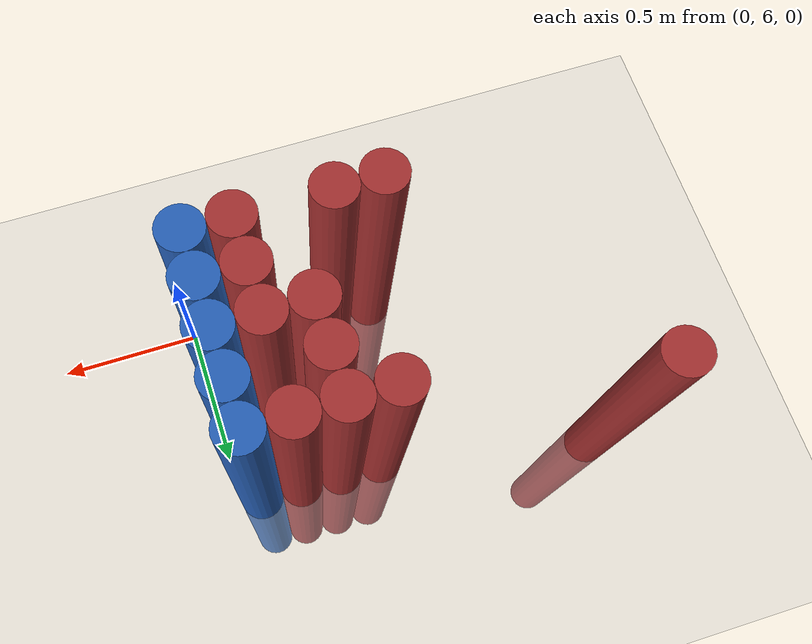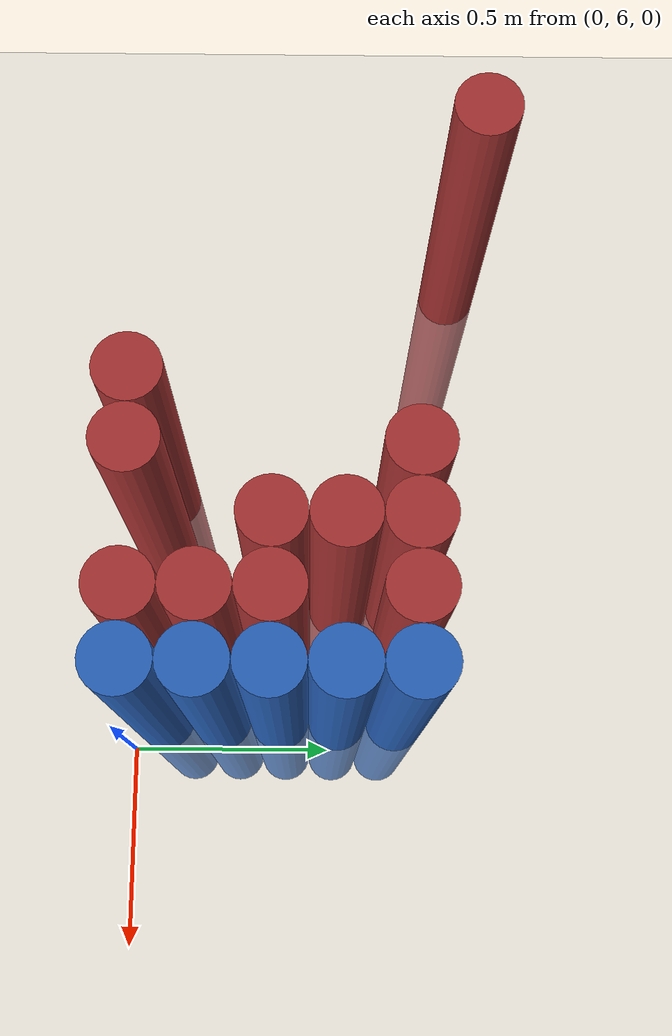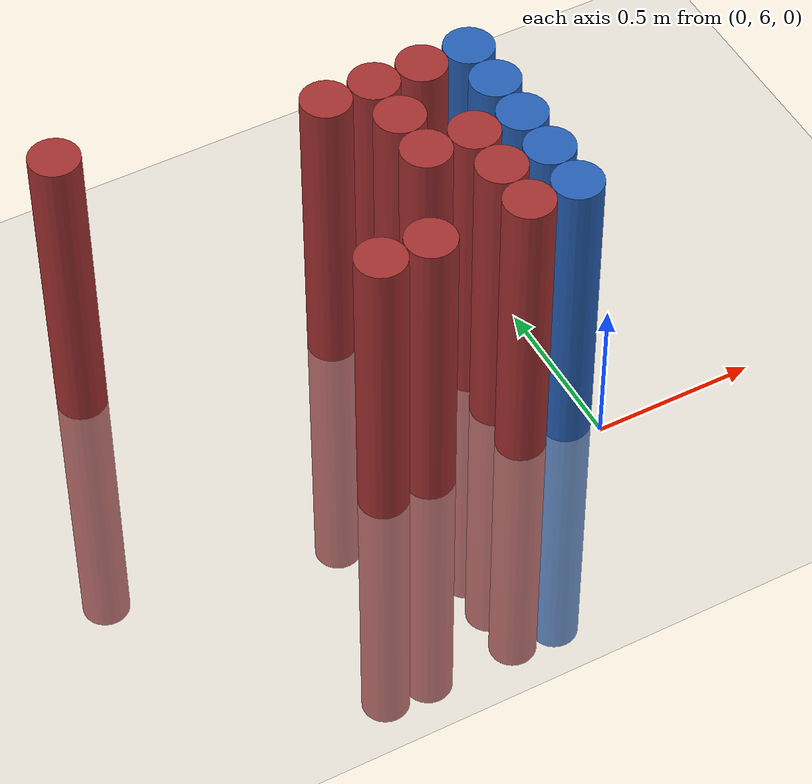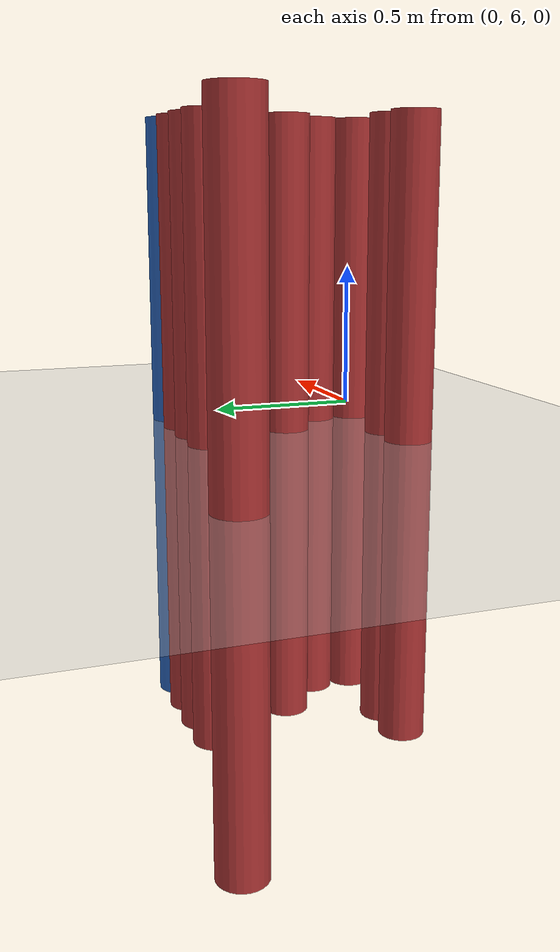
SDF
<sdf version="1.6">
 <world name="default">
  <model name="ground_plane">
   <static>1</static>
   <link name="link">
    <collision name="collision">
     <geometry><plane><normal>0 0 1</normal><size>100 100</size></plane></geometry>
     <surface><friction><ode><mu>100</mu><mu2>50</mu2></ode></friction></surface>
    </collision>
    <visual name="visual">
     <cast_shadows>0</cast_shadows>
     <geometry><plane><normal>0 0 1</normal><size>100 100</size></plane></geometry>
     <material>
      <script><uri>file://media/materials/scripts/gazebo.material</uri><name>Gazebo/Grey</name></script>
     </material>
    </visual>
   </link>
  </model>
  <model name="unit_cylinder_182">
   <static>1</static>
   <pose>-1.275000 6.825000 0.000000 0.000000 0.000000 0.000000</pose>
   <link name="link">
    <inertial>
     <mass>1</mass>
     <inertia><ixx>0.145833</ixx><ixy>0</ixy><ixz>0</ixz><iyy>0.145833</iyy><iyz>0</iyz><izz>0.125</izz></inertia>
    </inertial>
    <collision name="collision">
     <geometry><cylinder><radius>0.075000</radius><length>2</length></cylinder></geometry>
    </collision>
    <visual name="visual">
     <geometry><cylinder><radius>0.075000</radius><length>2</length></cylinder></geometry>
     <material>
      <ambient>0.648000 0.192000 0.192000 1</ambient>
      <diffuse>0.648000 0.192000 0.192000 1</diffuse>
     </material>
     <material>
      <script><name>Gazebo/Grey</name><uri>file://media/materials/scripts/gazebo.material</uri></script>
     </material>
    </visual>
   </link>
  </model>
  <model name="unit_cylinder_194">
   <static>1</static>
   <pose>-0.675000 6.075000 0.000000 0.000000 0.000000 0.000000</pose>
   <link name="link">
    <inertial>
     <mass>1</mass>
     <inertia><ixx>0.145833</ixx><ixy>0</ixy><ixz>0</ixz><iyy>0.145833</iyy><iyz>0</iyz><izz>0.125</izz></inertia>
    </inertial>
    <collision name="collision">
     <geometry><cylinder><radius>0.075000</radius><length>2</length></cylinder></geometry>
    </collision>
    <visual name="visual">
     <geometry><cylinder><radius>0.075000</radius><length>2</length></cylinder></geometry>
     <material>
      <ambient>0.648000 0.192000 0.192000 1</ambient>
      <diffuse>0.648000 0.192000 0.192000 1</diffuse>
     </material>
     <material>
      <script><name>Gazebo/Grey</name><uri>file://media/materials/scripts/gazebo.material</uri></script>
     </material>
    </visual>
   </link>
  </model>
  <model name="unit_cylinder_197">
   <static>1</static>
   <pose>-0.525000 6.075000 0.000000 0.000000 0.000000 0.000000</pose>
   <link name="link">
    <inertial>
     <mass>1</mass>
     <inertia><ixx>0.145833</ixx><ixy>0</ixy><ixz>0</ixz><iyy>0.145833</iyy><iyz>0</iyz><izz>0.125</izz></inertia>
    </inertial>
    <collision name="collision">
     <geometry><cylinder><radius>0.075000</radius><length>2</length></cylinder></geometry>
    </collision>
    <visual name="visual">
     <geometry><cylinder><radius>0.075000</radius><length>2</length></cylinder></geometry>
     <material>
      <ambient>0.648000 0.192000 0.192000 1</ambient>
      <diffuse>0.648000 0.192000 0.192000 1</diffuse>
     </material>
     <material>
      <script><name>Gazebo/Grey</name><uri>file://media/materials/scripts/gazebo.material</uri></script>
     </material>
    </visual>
   </link>
  </model>
  <model name="unit_cylinder_198">
   <static>1</static>
   <pose>-0.525000 6.675000 0.000000 0.000000 0.000000 0.000000</pose>
   <link name="link">
    <inertial>
     <mass>1</mass>
     <inertia><ixx>0.145833</ixx><ixy>0</ixy><ixz>0</ixz><iyy>0.145833</iyy><iyz>0</iyz><izz>0.125</izz></inertia>
    </inertial>
    <collision name="collision">
     <geometry><cylinder><radius>0.075000</radius><length>2</length></cylinder></geometry>
    </collision>
    <visual name="visual">
     <geometry><cylinder><radius>0.075000</radius><length>2</length></cylinder></geometry>
     <material>
      <ambient>0.648000 0.192000 0.192000 1</ambient>
      <diffuse>0.648000 0.192000 0.192000 1</diffuse>
     </material>
     <material>
      <script><name>Gazebo/Grey</name><uri>file://media/materials/scripts/gazebo.material</uri></script>
     </material>
    </visual>
   </link>
  </model>
  <model name="unit_cylinder_203">
   <static>1</static>
   <pose>-0.375000 6.375000 0.000000 0.000000 0.000000 0.000000</pose>
   <link name="link">
    <inertial>
     <mass>1</mass>
     <inertia><ixx>0.145833</ixx><ixy>0</ixy><ixz>0</ixz><iyy>0.145833</iyy><iyz>0</iyz><izz>0.125</izz></inertia>
    </inertial>
    <collision name="collision">
     <geometry><cylinder><radius>0.075000</radius><length>2</length></cylinder></geometry>
    </collision>
    <visual name="visual">
     <geometry><cylinder><radius>0.075000</radius><length>2</length></cylinder></geometry>
     <material>
      <ambient>0.648000 0.192000 0.192000 1</ambient>
      <diffuse>0.648000 0.192000 0.192000 1</diffuse>
     </material>
     <material>
      <script><name>Gazebo/Grey</name><uri>file://media/materials/scripts/gazebo.material</uri></script>
     </material>
    </visual>
   </link>
  </model>
  <model name="unit_cylinder_204">
   <static>1</static>
   <pose>-0.375000 6.525000 0.000000 0.000000 0.000000 0.000000</pose>
   <link name="link">
    <inertial>
     <mass>1</mass>
     <inertia><ixx>0.145833</ixx><ixy>0</ixy><ixz>0</ixz><iyy>0.145833</iyy><iyz>0</iyz><izz>0.125</izz></inertia>
    </inertial>
    <collision name="collision">
     <geometry><cylinder><radius>0.075000</radius><length>2</length></cylinder></geometry>
    </collision>
    <visual name="visual">
     <geometry><cylinder><radius>0.075000</radius><length>2</length></cylinder></geometry>
     <material>
      <ambient>0.648000 0.192000 0.192000 1</ambient>
      <diffuse>0.648000 0.192000 0.192000 1</diffuse>
     </material>
     <material>
      <script><name>Gazebo/Grey</name><uri>file://media/materials/scripts/gazebo.material</uri></script>
     </material>
    </visual>
   </link>
  </model>
  <model name="unit_cylinder_205">
   <static>1</static>
   <pose>-0.375000 6.675000 0.000000 0.000000 0.000000 0.000000</pose>
   <link name="link">
    <inertial>
     <mass>1</mass>
     <inertia><ixx>0.145833</ixx><ixy>0</ixy><ixz>0</ixz><iyy>0.145833</iyy><iyz>0</iyz><izz>0.125</izz></inertia>
    </inertial>
    <collision name="collision">
     <geometry><cylinder><radius>0.075000</radius><length>2</length></cylinder></geometry>
    </collision>
    <visual name="visual">
     <geometry><cylinder><radius>0.075000</radius><length>2</length></cylinder></geometry>
     <material>
      <ambient>0.648000 0.192000 0.192000 1</ambient>
      <diffuse>0.648000 0.192000 0.192000 1</diffuse>
     </material>
     <material>
      <script><name>Gazebo/Grey</name><uri>file://media/materials/scripts/gazebo.material</uri></script>
     </material>
    </visual>
   </link>
  </model>
  <model name="unit_cylinder_215">
   <static>1</static>
   <pose>-0.225000 6.075000 0.000000 0.000000 0.000000 0.000000</pose>
   <link name="link">
    <inertial>
     <mass>1</mass>
     <inertia><ixx>0.145833</ixx><ixy>0</ixy><ixz>0</ixz><iyy>0.145833</iyy><iyz>0</iyz><izz>0.125</izz></inertia>
    </inertial>
    <collision name="collision">
     <geometry><cylinder><radius>0.075000</radius><length>2</length></cylinder></geometry>
    </collision>
    <visual name="visual">
     <geometry><cylinder><radius>0.075000</radius><length>2</length></cylinder></geometry>
     <material>
      <ambient>0.648000 0.192000 0.192000 1</ambient>
      <diffuse>0.648000 0.192000 0.192000 1</diffuse>
     </material>
     <material>
      <script><name>Gazebo/Grey</name><uri>file://media/materials/scripts/gazebo.material</uri></script>
     </material>
    </visual>
   </link>
  </model>
  <model name="unit_cylinder_216">
   <static>1</static>
   <pose>-0.225000 6.225000 0.000000 0.000000 0.000000 0.000000</pose>
   <link name="link">
    <inertial>
     <mass>1</mass>
     <inertia><ixx>0.145833</ixx><ixy>0</ixy><ixz>0</ixz><iyy>0.145833</iyy><iyz>0</iyz><izz>0.125</izz></inertia>
    </inertial>
    <collision name="collision">
     <geometry><cylinder><radius>0.075000</radius><length>2</length></cylinder></geometry>
    </collision>
    <visual name="visual">
     <geometry><cylinder><radius>0.075000</radius><length>2</length></cylinder></geometry>
     <material>
      <ambient>0.648000 0.192000 0.192000 1</ambient>
      <diffuse>0.648000 0.192000 0.192000 1</diffuse>
     </material>
     <material>
      <script><name>Gazebo/Grey</name><uri>file://media/materials/scripts/gazebo.material</uri></script>
     </material>
    </visual>
   </link>
  </model>
  <model name="unit_cylinder_217">
   <static>1</static>
   <pose>-0.225000 6.375000 0.000000 0.000000 0.000000 0.000000</pose>
   <link name="link">
    <inertial>
     <mass>1</mass>
     <inertia><ixx>0.145833</ixx><ixy>0</ixy><ixz>0</ixz><iyy>0.145833</iyy><iyz>0</iyz><izz>0.125</izz></inertia>
    </inertial>
    <collision name="collision">
     <geometry><cylinder><radius>0.075000</radius><length>2</length></cylinder></geometry>
    </collision>
    <visual name="visual">
     <geometry><cylinder><radius>0.075000</radius><length>2</length></cylinder></geometry>
     <material>
      <ambient>0.648000 0.192000 0.192000 1</ambient>
      <diffuse>0.648000 0.192000 0.192000 1</diffuse>
     </material>
     <material>
      <script><name>Gazebo/Grey</name><uri>file://media/materials/scripts/gazebo.material</uri></script>
     </material>
    </visual>
   </link>
  </model>
  <model name="unit_cylinder_218">
   <static>1</static>
   <pose>-0.225000 6.675000 0.000000 0.000000 0.000000 0.000000</pose>
   <link name="link">
    <inertial>
     <mass>1</mass>
     <inertia><ixx>0.145833</ixx><ixy>0</ixy><ixz>0</ixz><iyy>0.145833</iyy><iyz>0</iyz><izz>0.125</izz></inertia>
    </inertial>
    <collision name="collision">
     <geometry><cylinder><radius>0.075000</radius><length>2</length></cylinder></geometry>
    </collision>
    <visual name="visual">
     <geometry><cylinder><radius>0.075000</radius><length>2</length></cylinder></geometry>
     <material>
      <ambient>0.648000 0.192000 0.192000 1</ambient>
      <diffuse>0.648000 0.192000 0.192000 1</diffuse>
     </material>
     <material>
      <script><name>Gazebo/Grey</name><uri>file://media/materials/scripts/gazebo.material</uri></script>
     </material>
    </visual>
   </link>
  </model>
  <model name="unit_cylinder_234">
   <static>1</static>
   <pose>-0.075000 6.075000 0.000000 0.000000 0.000000 0.000000</pose>
   <link name="link">
    <inertial>
     <mass>1</mass>
     <inertia><ixx>0.145833</ixx><ixy>0</ixy><ixz>0</ixz><iyy>0.145833</iyy><iyz>0</iyz><izz>0.125</izz></inertia>
    </inertial>
    <collision name="collision">
     <geometry><cylinder><radius>0.075000</radius><length>2</length></cylinder></geometry>
    </collision>
    <visual name="visual">
     <geometry><cylinder><radius>0.075000</radius><length>2</length></cylinder></geometry>
     <material>
      <ambient>0.152000 0.379000 0.720000 1</ambient>
      <diffuse>0.152000 0.379000 0.720000 1</diffuse>
     </material>
     <material>
      <script><name>Gazebo/Grey</name><uri>file://media/materials/scripts/gazebo.material</uri></script>
     </material>
    </visual>
   </link>
  </model>
  <model name="unit_cylinder_235">
   <static>1</static>
   <pose>-0.075000 6.225000 0.000000 0.000000 0.000000 0.000000</pose>
   <link name="link">
    <inertial>
     <mass>1</mass>
     <inertia><ixx>0.145833</ixx><ixy>0</ixy><ixz>0</ixz><iyy>0.145833</iyy><iyz>0</iyz><izz>0.125</izz></inertia>
    </inertial>
    <collision name="collision">
     <geometry><cylinder><radius>0.075000</radius><length>2</length></cylinder></geometry>
    </collision>
    <visual name="visual">
     <geometry><cylinder><radius>0.075000</radius><length>2</length></cylinder></geometry>
     <material>
      <ambient>0.152000 0.379000 0.720000 1</ambient>
      <diffuse>0.152000 0.379000 0.720000 1</diffuse>
     </material>
     <material>
      <script><name>Gazebo/Grey</name><uri>file://media/materials/scripts/gazebo.material</uri></script>
     </material>
    </visual>
   </link>
  </model>
  <model name="unit_cylinder_236">
   <static>1</static>
   <pose>-0.075000 6.375000 0.000000 0.000000 0.000000 0.000000</pose>
   <link name="link">
    <inertial>
     <mass>1</mass>
     <inertia><ixx>0.145833</ixx><ixy>0</ixy><ixz>0</ixz><iyy>0.145833</iyy><iyz>0</iyz><izz>0.125</izz></inertia>
    </inertial>
    <collision name="collision">
     <geometry><cylinder><radius>0.075000</radius><length>2</length></cylinder></geometry>
    </collision>
    <visual name="visual">
     <geometry><cylinder><radius>0.075000</radius><length>2</length></cylinder></geometry>
     <material>
      <ambient>0.152000 0.379000 0.720000 1</ambient>
      <diffuse>0.152000 0.379000 0.720000 1</diffuse>
     </material>
     <material>
      <script><name>Gazebo/Grey</name><uri>file://media/materials/scripts/gazebo.material</uri></script>
     </material>
    </visual>
   </link>
  </model>
  <model name="unit_cylinder_237">
   <static>1</static>
   <pose>-0.075000 6.525000 0.000000 0.000000 0.000000 0.000000</pose>
   <link name="link">
    <inertial>
     <mass>1</mass>
     <inertia><ixx>0.145833</ixx><ixy>0</ixy><ixz>0</ixz><iyy>0.145833</iyy><iyz>0</iyz><izz>0.125</izz></inertia>
    </inertial>
    <collision name="collision">
     <geometry><cylinder><radius>0.075000</radius><length>2</length></cylinder></geometry>
    </collision>
    <visual name="visual">
     <geometry><cylinder><radius>0.075000</radius><length>2</length></cylinder></geometry>
     <material>
      <ambient>0.152000 0.379000 0.720000 1</ambient>
      <diffuse>0.152000 0.379000 0.720000 1</diffuse>
     </material>
     <material>
      <script><name>Gazebo/Grey</name><uri>file://media/materials/scripts/gazebo.material</uri></script>
     </material>
    </visual>
   </link>
  </model>
  <model name="unit_cylinder_238">
   <static>1</static>
   <pose>-0.075000 6.675000 0.000000 0.000000 0.000000 0.000000</pose>
   <link name="link">
    <inertial>
     <mass>1</mass>
     <inertia><ixx>0.145833</ixx><ixy>0</ixy><ixz>0</ixz><iyy>0.145833</iyy><iyz>0</iyz><izz>0.125</izz></inertia>
    </inertial>
    <collision name="collision">
     <geometry><cylinder><radius>0.075000</radius><length>2</length></cylinder></geometry>
    </collision>
    <visual name="visual">
     <geometry><cylinder><radius>0.075000</radius><length>2</length></cylinder></geometry>
     <material>
      <ambient>0.152000 0.379000 0.720000 1</ambient>
      <diffuse>0.152000 0.379000 0.720000 1</diffuse>
     </material>
     <material>
      <script><name>Gazebo/Grey</name><uri>file://media/materials/scripts/gazebo.material</uri></script>
     </material>
    </visual>
   </link>
  </model>
 </world>
</sdf>
